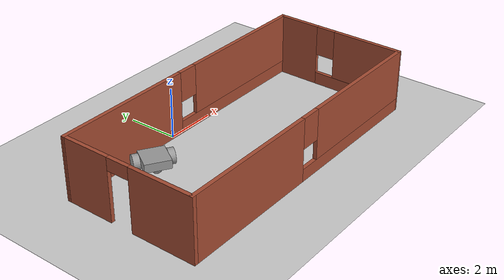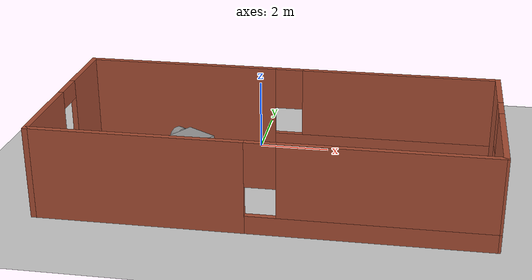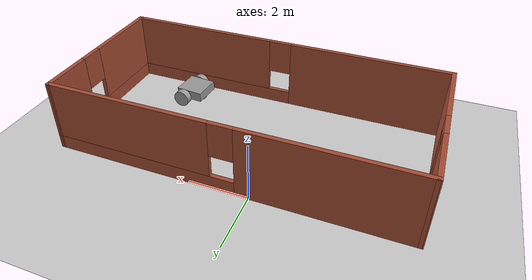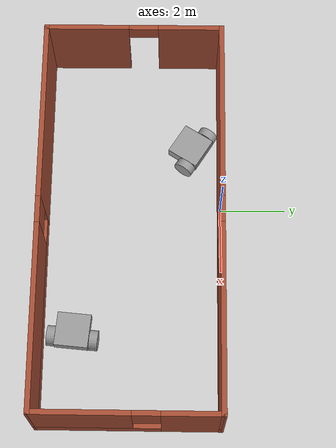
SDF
<sdf version="1.6">
 <world name="default">
  <plugin name="hello_world" filename="libhello_world.so"/>
  <light name="sun" type="directional">
   <pose>0 0 10 0 -0 0</pose>
   <diffuse>0.8 0.8 0.8 1</diffuse>
   <specular>0.2 0.2 0.2 1</specular>
   <attenuation>
    <range>1000</range>
    <constant>0.9</constant>
    <linear>0.01</linear>
    <quadratic>0.001</quadratic>
   </attenuation>
   <direction>-0.5 0.1 -0.9</direction>
  </light>
  <model name="ground_plane">
   <static>1</static>
   <link name="link">
    <collision name="collision">
     <geometry><plane><normal>0 0 1</normal><size>100 100</size></plane></geometry>
     <surface>
      <contact><collide_bitmask>65535</collide_bitmask></contact>
      <friction><ode><mu>100</mu><mu2>50</mu2></ode></friction>
     </surface>
    </collision>
    <visual name="visual">
     <cast_shadows>0</cast_shadows>
     <geometry><plane><normal>0 0 1</normal><size>100 100</size></plane></geometry>
     <material>
      <script><uri>file://media/materials/scripts/gazebo.material</uri><name>Gazebo/Grey</name></script>
     </material>
    </visual>
   </link>
  </model>
  <gravity>0 0 -9.8</gravity>
  <magnetic_field>6e-06 2.3e-05 -4.2e-05</magnetic_field>
  <atmosphere type="adiabatic"/>
  <physics name="default_physics" default="0" type="ode">
   <max_step_size>0.001</max_step_size>
   <real_time_factor>1</real_time_factor>
   <real_time_update_rate>1000</real_time_update_rate>
  </physics>
  <scene><ambient>0.4 0.4 0.4 1</ambient><background>0.7 0.7 0.7 1</background><shadows>1</shadows></scene>
  <audio><device>default</device></audio>
  <spherical_coordinates>
   <surface_model>EARTH_WGS84</surface_model>
   <latitude_deg>0</latitude_deg>
   <longitude_deg>0</longitude_deg>
   <elevation>0</elevation>
   <heading_deg>0</heading_deg>
  </spherical_coordinates>
  <model name="buildtemp">
   <pose>0.865768 -2.69248 0 0 -0 0</pose>
   <link name="Wall_1">
    <pose>-0.000147 2.66513 0 0 -0 -0.001691</pose>
    <visual name="Wall_1_Visual_0">
     <pose>-3.20401 0 1.25 0 -0 0</pose>
     <geometry><box><size>5.57199 0.15 2.5</size></box></geometry>
     <material>
      <script><uri>file://media/materials/scripts/gazebo.material</uri><name>Gazebo/Bricks</name></script>
      <ambient>1 1 1 1</ambient>
     </material>
     <meta><layer>0</layer></meta>
    </visual>
    <collision name="Wall_1_Collision_0">
     <geometry><box><size>5.57199 0.15 2.5</size></box></geometry>
     <pose>-3.20401 0 1.25 0 -0 0</pose>
    </collision>
    <visual name="Wall_1_Visual_1">
     <pose>2.786 0 0.25 0 -0 0</pose>
     <geometry><box><size>6.40802 0.15 0.5</size></box></geometry>
     <material>
      <script><uri>file://media/materials/scripts/gazebo.material</uri><name>Gazebo/Bricks</name></script>
      <ambient>1 1 1 1</ambient>
     </material>
     <meta><layer>0</layer></meta>
    </visual>
    <collision name="Wall_1_Collision_1">
     <geometry><box><size>6.40802 0.15 0.5</size></box></geometry>
     <pose>2.786 0 0.25 0 -0 0</pose>
    </collision>
    <visual name="Wall_1_Visual_2">
     <pose>3.186 0 1.5 0 -0 0</pose>
     <geometry><box><size>5.60802 0.15 2</size></box></geometry>
     <material>
      <script><uri>file://media/materials/scripts/gazebo.material</uri><name>Gazebo/Bricks</name></script>
      <ambient>1 1 1 1</ambient>
     </material>
     <meta><layer>0</layer></meta>
    </visual>
    <collision name="Wall_1_Collision_2">
     <geometry><box><size>5.60802 0.15 2</size></box></geometry>
     <pose>3.186 0 1.5 0 -0 0</pose>
    </collision>
    <visual name="Wall_1_Visual_3">
     <pose>-0.018015 0 1.9 0 -0 0</pose>
     <geometry><box><size>0.8 0.15 1.2</size></box></geometry>
     <material>
      <script><uri>file://media/materials/scripts/gazebo.material</uri><name>Gazebo/Bricks</name></script>
      <ambient>1 1 1 1</ambient>
     </material>
     <meta><layer>0</layer></meta>
    </visual>
    <collision name="Wall_1_Collision_3">
     <geometry><box><size>0.8 0.15 1.2</size></box></geometry>
     <pose>-0.018015 0 1.9 0 -0 0</pose>
    </collision>
   </link>
   <link name="Wall_3">
    <pose>-5.91515 0.000129 0 0 -0 -1.5708</pose>
    <visual name="Wall_3_Visual_0">
     <pose>-1.74357 0 1.25 0 -0 0</pose>
     <geometry><box><size>2.013 0.15 2.5</size></box></geometry>
     <material>
      <script><uri>file://media/materials/scripts/gazebo.material</uri><name>Gazebo/Bricks</name></script>
      <ambient>1 1 1 1</ambient>
     </material>
     <meta><layer>0</layer></meta>
    </visual>
    <collision name="Wall_3_Collision_0">
     <geometry><box><size>2.013 0.15 2.5</size></box></geometry>
     <pose>-1.74357 0 1.25 0 -0 0</pose>
    </collision>
    <visual name="Wall_3_Visual_1">
     <pose>1.4565 0 1.25 0 -0 0</pose>
     <geometry><box><size>2.58715 0.15 2.5</size></box></geometry>
     <material>
      <script><uri>file://media/materials/scripts/gazebo.material</uri><name>Gazebo/Bricks</name></script>
      <ambient>1 1 1 1</ambient>
     </material>
     <meta><layer>0</layer></meta>
    </visual>
    <collision name="Wall_3_Collision_1">
     <geometry><box><size>2.58715 0.15 2.5</size></box></geometry>
     <pose>1.4565 0 1.25 0 -0 0</pose>
    </collision>
    <visual name="Wall_3_Visual_2">
     <pose>-0.287073 0 2.25 0 -0 0</pose>
     <geometry><box><size>0.9 0.15 0.5</size></box></geometry>
     <material>
      <script><uri>file://media/materials/scripts/gazebo.material</uri><name>Gazebo/Bricks</name></script>
      <ambient>1 1 1 1</ambient>
     </material>
     <meta><layer>0</layer></meta>
    </visual>
    <collision name="Wall_3_Collision_2">
     <geometry><box><size>0.9 0.15 0.5</size></box></geometry>
     <pose>-0.287073 0 2.25 0 -0 0</pose>
    </collision>
   </link>
   <link name="Wall_6">
    <pose>-0.015147 -2.67487 0 0 -0 0</pose>
    <visual name="Wall_6_Visual_0">
     <pose>-3.16055 0 1.25 0 -0 0</pose>
     <geometry><box><size>5.62891 0.15 2.5</size></box></geometry>
     <material>
      <script><uri>file://media/materials/scripts/gazebo.material</uri><name>Gazebo/Bricks</name></script>
      <ambient>1 1 1 1</ambient>
     </material>
     <meta><layer>0</layer></meta>
    </visual>
    <collision name="Wall_6_Collision_0">
     <geometry><box><size>5.62891 0.15 2.5</size></box></geometry>
     <pose>-3.16055 0 1.25 0 -0 0</pose>
    </collision>
    <visual name="Wall_6_Visual_1">
     <pose>2.81445 0 0.25 0 -0 0</pose>
     <geometry><box><size>6.32109 0.15 0.5</size></box></geometry>
     <material>
      <script><uri>file://media/materials/scripts/gazebo.material</uri><name>Gazebo/Bricks</name></script>
      <ambient>1 1 1 1</ambient>
     </material>
     <meta><layer>0</layer></meta>
    </visual>
    <collision name="Wall_6_Collision_1">
     <geometry><box><size>6.32109 0.15 0.5</size></box></geometry>
     <pose>2.81445 0 0.25 0 -0 0</pose>
    </collision>
    <visual name="Wall_6_Visual_2">
     <pose>3.21445 0 1.5 0 -0 0</pose>
     <geometry><box><size>5.52109 0.15 2</size></box></geometry>
     <material>
      <script><uri>file://media/materials/scripts/gazebo.material</uri><name>Gazebo/Bricks</name></script>
      <ambient>1 1 1 1</ambient>
     </material>
     <meta><layer>0</layer></meta>
    </visual>
    <collision name="Wall_6_Collision_2">
     <geometry><box><size>5.52109 0.15 2</size></box></geometry>
     <pose>3.21445 0 1.5 0 -0 0</pose>
    </collision>
    <visual name="Wall_6_Visual_3">
     <pose>0.053909 0 1.9 0 -0 0</pose>
     <geometry><box><size>0.8 0.15 1.2</size></box></geometry>
     <material>
      <script><uri>file://media/materials/scripts/gazebo.material</uri><name>Gazebo/Bricks</name></script>
      <ambient>1 1 1 1</ambient>
     </material>
     <meta><layer>0</layer></meta>
    </visual>
    <collision name="Wall_6_Collision_3">
     <geometry><box><size>0.8 0.15 1.2</size></box></geometry>
     <pose>0.053909 0 1.9 0 -0 0</pose>
    </collision>
   </link>
   <link name="Wall_8">
    <pose>5.89985 -0.009871 0 0 -0 -1.57642</pose>
    <visual name="Wall_8_Visual_0">
     <pose>-1.84319 0 1.25 0 -0 0</pose>
     <geometry><box><size>1.79363 0.15 2.5</size></box></geometry>
     <material>
      <script><uri>file://media/materials/scripts/gazebo.material</uri><name>Gazebo/Bricks</name></script>
      <ambient>1 1 1 1</ambient>
     </material>
     <meta><layer>0</layer></meta>
    </visual>
    <collision name="Wall_8_Collision_0">
     <geometry><box><size>1.79363 0.15 2.5</size></box></geometry>
     <pose>-1.84319 0 1.25 0 -0 0</pose>
    </collision>
    <visual name="Wall_8_Visual_1">
     <pose>0.896814 0 0.25 0 -0 0</pose>
     <geometry><box><size>3.68638 0.15 0.5</size></box></geometry>
     <material>
      <script><uri>file://media/materials/scripts/gazebo.material</uri><name>Gazebo/Bricks</name></script>
      <ambient>1 1 1 1</ambient>
     </material>
     <meta><layer>0</layer></meta>
    </visual>
    <collision name="Wall_8_Collision_1">
     <geometry><box><size>3.68638 0.15 0.5</size></box></geometry>
     <pose>0.896814 0 0.25 0 -0 0</pose>
    </collision>
    <visual name="Wall_8_Visual_2">
     <pose>1.29681 0 1.5 0 -0 0</pose>
     <geometry><box><size>2.88638 0.15 2</size></box></geometry>
     <material>
      <script><uri>file://media/materials/scripts/gazebo.material</uri><name>Gazebo/Bricks</name></script>
      <ambient>1 1 1 1</ambient>
     </material>
     <meta><layer>0</layer></meta>
    </visual>
    <collision name="Wall_8_Collision_2">
     <geometry><box><size>2.88638 0.15 2</size></box></geometry>
     <pose>1.29681 0 1.5 0 -0 0</pose>
    </collision>
    <visual name="Wall_8_Visual_3">
     <pose>-0.546377 0 1.9 0 -0 0</pose>
     <geometry><box><size>0.8 0.15 1.2</size></box></geometry>
     <material>
      <script><uri>file://media/materials/scripts/gazebo.material</uri><name>Gazebo/Bricks</name></script>
      <ambient>1 1 1 1</ambient>
     </material>
     <meta><layer>0</layer></meta>
    </visual>
    <collision name="Wall_8_Collision_3">
     <geometry><box><size>0.8 0.15 1.2</size></box></geometry>
     <pose>-0.546377 0 1.9 0 -0 0</pose>
    </collision>
   </link>
   <static>1</static>
  </model>
  <model name="first_vehcile">
   <link name="link_0">
    <inertial>
     <mass>0.340951</mass>
     <inertia>
      <ixx>0.0317155</ixx>
      <ixy>0</ixy>
      <ixz>0</ixz>
      <iyy>0.0317155</iyy>
      <iyz>0</iyz>
      <izz>0.0568252</izz>
     </inertia>
    </inertial>
    <pose>-0.08053 0.001105 0.16 0 -0 0</pose>
    <visual name="visual">
     <geometry><box><size>1 1 0.340953</size></box></geometry>
     <material>
      <lighting>1</lighting>
      <script><uri>file://media/materials/scripts/gazebo.material</uri><name>Gazebo/Grey</name></script>
      <shader type="vertex"><normal_map>__default__</normal_map></shader>
      <ambient>0.3 0.3 0.3 1</ambient>
      <diffuse>0.7 0.7 0.7 1</diffuse>
      <specular>0.01 0.01 0.01 1</specular>
      <emissive>0 0 0 1</emissive>
     </material>
    </visual>
    <collision name="collision">
     <geometry><box><size>1 1 0.340953</size></box></geometry>
     <surface>
      <friction>
       <ode><mu>1</mu><mu2>1</mu2><fdir1>0 0 0</fdir1><slip1>0</slip1><slip2>0</slip2></ode>
       <torsional>
        <coefficient>1</coefficient>
        <patch_radius>0</patch_radius>
        <surface_radius>0</surface_radius>
        <use_patch_radius>1</use_patch_radius>
        <ode><slip>0</slip></ode>
       </torsional>
      </friction>
      <bounce><restitution_coefficient>0</restitution_coefficient><threshold>1e+06</threshold></bounce>
      <contact>
       <collide_without_contact>0</collide_without_contact>
       <collide_without_contact_bitmask>1</collide_without_contact_bitmask>
       <collide_bitmask>1</collide_bitmask>
       <ode>
        <soft_cfm>0</soft_cfm>
        <soft_erp>0.2</soft_erp>
        <kp>1e+13</kp>
        <kd>1</kd>
        <max_vel>0.01</max_vel>
        <min_depth>0</min_depth>
       </ode>
       <bullet>
        <split_impulse>1</split_impulse>
        <split_impulse_penetration_threshold>-0.01</split_impulse_penetration_threshold>
        <soft_cfm>0</soft_cfm>
        <soft_erp>0.2</soft_erp>
        <kp>1e+13</kp>
        <kd>1</kd>
       </bullet>
      </contact>
     </surface>
    </collision>
   </link>
   <link name="link_1">
    <inertial>
     <mass>1</mass>
     <inertia><ixx>0.145833</ixx><ixy>0</ixy><ixz>0</ixz><iyy>0.145833</iyy><iyz>0</iyz><izz>0.125</izz></inertia>
    </inertial>
    <pose>0.11947 0.641134 0.06 1.5707 -0 0</pose>
    <visual name="visual">
     <geometry><cylinder><radius>0.3</radius><length>0.25</length></cylinder></geometry>
     <material>
      <lighting>1</lighting>
      <script><uri>file://media/materials/scripts/gazebo.material</uri><name>Gazebo/Grey</name></script>
      <shader type="vertex"><normal_map>__default__</normal_map></shader>
      <ambient>0.3 0.3 0.3 1</ambient>
      <diffuse>0.7 0.7 0.7 1</diffuse>
      <specular>0.01 0.01 0.01 1</specular>
      <emissive>0 0 0 1</emissive>
     </material>
    </visual>
    <collision name="collision">
     <geometry><cylinder><radius>0.3</radius><length>0.25</length></cylinder></geometry>
     <surface>
      <friction>
       <ode><mu>1</mu><mu2>1</mu2><fdir1>0 0 0</fdir1><slip1>0</slip1><slip2>0</slip2></ode>
       <torsional>
        <coefficient>1</coefficient>
        <patch_radius>0</patch_radius>
        <surface_radius>0</surface_radius>
        <use_patch_radius>1</use_patch_radius>
        <ode><slip>0</slip></ode>
       </torsional>
      </friction>
      <bounce><restitution_coefficient>0</restitution_coefficient><threshold>1e+06</threshold></bounce>
      <contact>
       <collide_without_contact>0</collide_without_contact>
       <collide_without_contact_bitmask>1</collide_without_contact_bitmask>
       <collide_bitmask>1</collide_bitmask>
       <ode>
        <soft_cfm>0</soft_cfm>
        <soft_erp>0.2</soft_erp>
        <kp>1e+13</kp>
        <kd>1</kd>
        <max_vel>0.01</max_vel>
        <min_depth>0</min_depth>
       </ode>
       <bullet>
        <split_impulse>1</split_impulse>
        <split_impulse_penetration_threshold>-0.01</split_impulse_penetration_threshold>
        <soft_cfm>0</soft_cfm>
        <soft_erp>0.2</soft_erp>
        <kp>1e+13</kp>
        <kd>1</kd>
       </bullet>
      </contact>
     </surface>
    </collision>
   </link>
   <link name="link_1_clone">
    <inertial>
     <mass>1</mass>
     <inertia><ixx>0.145833</ixx><ixy>0</ixy><ixz>0</ixz><iyy>0.145833</iyy><iyz>0</iyz><izz>0.125</izz></inertia>
    </inertial>
    <pose>0.102841 -0.623924 0.06 1.5707 -0 0</pose>
    <visual name="visual">
     <geometry><cylinder><radius>0.3</radius><length>0.25</length></cylinder></geometry>
     <material>
      <lighting>1</lighting>
      <script><uri>file://media/materials/scripts/gazebo.material</uri><name>Gazebo/Grey</name></script>
      <shader type="vertex"><normal_map>__default__</normal_map></shader>
      <ambient>0.3 0.3 0.3 1</ambient>
      <diffuse>0.7 0.7 0.7 1</diffuse>
      <specular>0.01 0.01 0.01 1</specular>
      <emissive>0 0 0 1</emissive>
     </material>
    </visual>
    <collision name="collision">
     <geometry><cylinder><radius>0.3</radius><length>0.25</length></cylinder></geometry>
     <surface>
      <friction>
       <ode><mu>1</mu><mu2>1</mu2><fdir1>0 0 0</fdir1><slip1>0</slip1><slip2>0</slip2></ode>
       <torsional>
        <coefficient>1</coefficient>
        <patch_radius>0</patch_radius>
        <surface_radius>0</surface_radius>
        <use_patch_radius>1</use_patch_radius>
        <ode><slip>0</slip></ode>
       </torsional>
      </friction>
      <bounce><restitution_coefficient>0</restitution_coefficient><threshold>1e+06</threshold></bounce>
      <contact>
       <collide_without_contact>0</collide_without_contact>
       <collide_without_contact_bitmask>1</collide_without_contact_bitmask>
       <collide_bitmask>1</collide_bitmask>
       <ode>
        <soft_cfm>0</soft_cfm>
        <soft_erp>0.2</soft_erp>
        <kp>1e+13</kp>
        <kd>1</kd>
        <max_vel>0.01</max_vel>
        <min_depth>0</min_depth>
       </ode>
       <bullet>
        <split_impulse>1</split_impulse>
        <split_impulse_penetration_threshold>-0.01</split_impulse_penetration_threshold>
        <soft_cfm>0</soft_cfm>
        <soft_erp>0.2</soft_erp>
        <kp>1e+13</kp>
        <kd>1</kd>
       </bullet>
      </contact>
     </surface>
    </collision>
   </link>
   <link name="link_2">
    <inertial>
     <mass>1</mass>
     <inertia><ixx>0.1</ixx><ixy>0</ixy><ixz>0</ixz><iyy>0.1</iyy><iyz>0</iyz><izz>0.1</izz></inertia>
    </inertial>
    <pose>-0.33053 0.001105 -0.04 0 -0 0</pose>
    <visual name="visual">
     <geometry><sphere><radius>0.2</radius></sphere></geometry>
     <material>
      <lighting>1</lighting>
      <script><uri>file://media/materials/scripts/gazebo.material</uri><name>Gazebo/Grey</name></script>
      <shader type="vertex"><normal_map>__default__</normal_map></shader>
      <ambient>0.3 0.3 0.3 1</ambient>
      <diffuse>0.7 0.7 0.7 1</diffuse>
      <specular>0.01 0.01 0.01 1</specular>
      <emissive>0 0 0 1</emissive>
     </material>
    </visual>
    <collision name="collision">
     <geometry><sphere><radius>0.2</radius></sphere></geometry>
     <surface>
      <friction>
       <ode><mu>1</mu><mu2>1</mu2><fdir1>0 0 0</fdir1><slip1>0</slip1><slip2>0</slip2></ode>
       <torsional>
        <coefficient>1</coefficient>
        <patch_radius>0</patch_radius>
        <surface_radius>0</surface_radius>
        <use_patch_radius>1</use_patch_radius>
        <ode><slip>0</slip></ode>
       </torsional>
      </friction>
      <bounce><restitution_coefficient>0</restitution_coefficient><threshold>1e+06</threshold></bounce>
      <contact>
       <collide_without_contact>0</collide_without_contact>
       <collide_without_contact_bitmask>1</collide_without_contact_bitmask>
       <collide_bitmask>1</collide_bitmask>
       <ode>
        <soft_cfm>0</soft_cfm>
        <soft_erp>0.2</soft_erp>
        <kp>1e+13</kp>
        <kd>1</kd>
        <max_vel>0.01</max_vel>
        <min_depth>0</min_depth>
       </ode>
       <bullet>
        <split_impulse>1</split_impulse>
        <split_impulse_penetration_threshold>-0.01</split_impulse_penetration_threshold>
        <soft_cfm>0</soft_cfm>
        <soft_erp>0.2</soft_erp>
        <kp>1e+13</kp>
        <kd>1</kd>
       </bullet>
      </contact>
     </surface>
    </collision>
   </link>
   <model name="depth_camera">
    <link name="link">
     <pose>0 0 0.05 0 -0 0</pose>
     <inertial>
      <mass>0.1</mass>
      <inertia>
       <ixx>0.000166667</ixx>
       <iyy>0.000166667</iyy>
       <izz>0.000166667</izz>
       <ixy>0</ixy>
       <ixz>0</ixz>
       <iyz>0</iyz>
      </inertia>
     </inertial>
     <collision name="collision"><geometry><box><size>0.1 0.1 0.1</size></box></geometry></collision>
     <visual name="visual"><geometry><box><size>0.1 0.1 0.1</size></box></geometry></visual>
     <sensor name="camera" type="depth">
      <camera name="__default__">
       <horizontal_fov>1.047</horizontal_fov>
       <image><width>320</width><height>240</height></image>
       <clip><near>0.1</near><far>100</far></clip>
      </camera>
      <always_on>1</always_on>
      <update_rate>30</update_rate>
      <visualize>1</visualize>
     </sensor>
    </link>
    <pose>0.188751 -0.019421 -0.24 0 -0 0</pose>
   </model>
   <joint name="link_0_JOINT_0" type="revolute">
    <parent>link_0</parent>
    <child>link_1</child>
    <axis>
     <xyz>0 0 1</xyz>
     <use_parent_model_frame>0</use_parent_model_frame>
     <limit>
      <lower>-1.79769e+308</lower>
      <upper>1.79769e+308</upper>
      <effort>-1</effort>
      <velocity>-1</velocity>
     </limit>
     <dynamics>
      <spring_reference>0</spring_reference>
      <spring_stiffness>0</spring_stiffness>
      <damping>0</damping>
     </dynamics>
    </axis>
    <physics>
     <ode><limit><cfm>0</cfm><erp>0.2</erp></limit><suspension><cfm>0</cfm><erp>0.2</erp></suspension></ode>
    </physics>
   </joint>
   <joint name="link_0_JOINT_1" type="revolute">
    <parent>link_0</parent>
    <child>link_1_clone</child>
    <axis>
     <xyz>0 0 1</xyz>
     <use_parent_model_frame>0</use_parent_model_frame>
     <limit>
      <lower>-1.79769e+308</lower>
      <upper>1.79769e+308</upper>
      <effort>-1</effort>
      <velocity>-1</velocity>
     </limit>
     <dynamics>
      <spring_reference>0</spring_reference>
      <spring_stiffness>0</spring_stiffness>
      <damping>0</damping>
     </dynamics>
    </axis>
    <physics>
     <ode><limit><cfm>0</cfm><erp>0.2</erp></limit><suspension><cfm>0</cfm><erp>0.2</erp></suspension></ode>
    </physics>
   </joint>
   <joint name="link_0_JOINT_2" type="ball">
    <parent>link_0</parent>
    <child>link_2</child>
    <physics>
     <ode><limit><cfm>0</cfm><erp>0.2</erp></limit><suspension><cfm>0</cfm><erp>0.2</erp></suspension></ode>
    </physics>
   </joint>
   <joint name="link_0_JOINT_3" type="fixed">
    <parent>link_0</parent>
    <child>depth_camera::link</child>
    <physics>
     <ode><limit><cfm>0</cfm><erp>0.2</erp></limit><suspension><cfm>0</cfm><erp>0.2</erp></suspension></ode>
    </physics>
   </joint>
   <static>0</static>
   <plugin name="follower" filename="libFollowerPlugin.so"/>
   <pose>-1.92647 -0.861656 0.240009 -3e-06 -3e-05 1.00519</pose>
  </model>
  <model name="first_vehcile_0">
   <link name="link_0">
    <inertial>
     <mass>0.340951</mass>
     <inertia>
      <ixx>0.0317155</ixx>
      <ixy>0</ixy>
      <ixz>0</ixz>
      <iyy>0.0317155</iyy>
      <iyz>0</iyz>
      <izz>0.0568252</izz>
     </inertia>
    </inertial>
    <pose>-0.08053 0.001105 0.16 0 -0 0</pose>
    <visual name="visual">
     <geometry><box><size>1 1 0.340953</size></box></geometry>
     <material>
      <lighting>1</lighting>
      <script><uri>file://media/materials/scripts/gazebo.material</uri><name>Gazebo/Grey</name></script>
      <shader type="vertex"><normal_map>__default__</normal_map></shader>
      <ambient>0.3 0.3 0.3 1</ambient>
      <diffuse>0.7 0.7 0.7 1</diffuse>
      <specular>0.01 0.01 0.01 1</specular>
      <emissive>0 0 0 1</emissive>
     </material>
    </visual>
    <collision name="collision">
     <geometry><box><size>1 1 0.340953</size></box></geometry>
     <surface>
      <friction>
       <ode><mu>1</mu><mu2>1</mu2><fdir1>0 0 0</fdir1><slip1>0</slip1><slip2>0</slip2></ode>
       <torsional>
        <coefficient>1</coefficient>
        <patch_radius>0</patch_radius>
        <surface_radius>0</surface_radius>
        <use_patch_radius>1</use_patch_radius>
        <ode><slip>0</slip></ode>
       </torsional>
      </friction>
      <bounce><restitution_coefficient>0</restitution_coefficient><threshold>1e+06</threshold></bounce>
      <contact>
       <collide_without_contact>0</collide_without_contact>
       <collide_without_contact_bitmask>1</collide_without_contact_bitmask>
       <collide_bitmask>1</collide_bitmask>
       <ode>
        <soft_cfm>0</soft_cfm>
        <soft_erp>0.2</soft_erp>
        <kp>1e+13</kp>
        <kd>1</kd>
        <max_vel>0.01</max_vel>
        <min_depth>0</min_depth>
       </ode>
       <bullet>
        <split_impulse>1</split_impulse>
        <split_impulse_penetration_threshold>-0.01</split_impulse_penetration_threshold>
        <soft_cfm>0</soft_cfm>
        <soft_erp>0.2</soft_erp>
        <kp>1e+13</kp>
        <kd>1</kd>
       </bullet>
      </contact>
     </surface>
    </collision>
   </link>
   <link name="link_1">
    <inertial>
     <mass>1</mass>
     <inertia><ixx>0.145833</ixx><ixy>0</ixy><ixz>0</ixz><iyy>0.145833</iyy><iyz>0</iyz><izz>0.125</izz></inertia>
    </inertial>
    <pose>0.11947 0.641134 0.06 1.5707 -0 0</pose>
    <visual name="visual">
     <geometry><cylinder><radius>0.3</radius><length>0.25</length></cylinder></geometry>
     <material>
      <lighting>1</lighting>
      <script><uri>file://media/materials/scripts/gazebo.material</uri><name>Gazebo/Grey</name></script>
      <shader type="vertex"><normal_map>__default__</normal_map></shader>
      <ambient>0.3 0.3 0.3 1</ambient>
      <diffuse>0.7 0.7 0.7 1</diffuse>
      <specular>0.01 0.01 0.01 1</specular>
      <emissive>0 0 0 1</emissive>
     </material>
    </visual>
    <collision name="collision">
     <geometry><cylinder><radius>0.3</radius><length>0.25</length></cylinder></geometry>
     <surface>
      <friction>
       <ode><mu>1</mu><mu2>1</mu2><fdir1>0 0 0</fdir1><slip1>0</slip1><slip2>0</slip2></ode>
       <torsional>
        <coefficient>1</coefficient>
        <patch_radius>0</patch_radius>
        <surface_radius>0</surface_radius>
        <use_patch_radius>1</use_patch_radius>
        <ode><slip>0</slip></ode>
       </torsional>
      </friction>
      <bounce><restitution_coefficient>0</restitution_coefficient><threshold>1e+06</threshold></bounce>
      <contact>
       <collide_without_contact>0</collide_without_contact>
       <collide_without_contact_bitmask>1</collide_without_contact_bitmask>
       <collide_bitmask>1</collide_bitmask>
       <ode>
        <soft_cfm>0</soft_cfm>
        <soft_erp>0.2</soft_erp>
        <kp>1e+13</kp>
        <kd>1</kd>
        <max_vel>0.01</max_vel>
        <min_depth>0</min_depth>
       </ode>
       <bullet>
        <split_impulse>1</split_impulse>
        <split_impulse_penetration_threshold>-0.01</split_impulse_penetration_threshold>
        <soft_cfm>0</soft_cfm>
        <soft_erp>0.2</soft_erp>
        <kp>1e+13</kp>
        <kd>1</kd>
       </bullet>
      </contact>
     </surface>
    </collision>
   </link>
   <link name="link_1_clone">
    <inertial>
     <mass>1</mass>
     <inertia><ixx>0.145833</ixx><ixy>0</ixy><ixz>0</ixz><iyy>0.145833</iyy><iyz>0</iyz><izz>0.125</izz></inertia>
    </inertial>
    <pose>0.102841 -0.623924 0.06 1.5707 -0 0</pose>
    <visual name="visual">
     <geometry><cylinder><radius>0.3</radius><length>0.25</length></cylinder></geometry>
     <material>
      <lighting>1</lighting>
      <script><uri>file://media/materials/scripts/gazebo.material</uri><name>Gazebo/Grey</name></script>
      <shader type="vertex"><normal_map>__default__</normal_map></shader>
      <ambient>0.3 0.3 0.3 1</ambient>
      <diffuse>0.7 0.7 0.7 1</diffuse>
      <specular>0.01 0.01 0.01 1</specular>
      <emissive>0 0 0 1</emissive>
     </material>
    </visual>
    <collision name="collision">
     <geometry><cylinder><radius>0.3</radius><length>0.25</length></cylinder></geometry>
     <surface>
      <friction>
       <ode><mu>1</mu><mu2>1</mu2><fdir1>0 0 0</fdir1><slip1>0</slip1><slip2>0</slip2></ode>
       <torsional>
        <coefficient>1</coefficient>
        <patch_radius>0</patch_radius>
        <surface_radius>0</surface_radius>
        <use_patch_radius>1</use_patch_radius>
        <ode><slip>0</slip></ode>
       </torsional>
      </friction>
      <bounce><restitution_coefficient>0</restitution_coefficient><threshold>1e+06</threshold></bounce>
      <contact>
       <collide_without_contact>0</collide_without_contact>
       <collide_without_contact_bitmask>1</collide_without_contact_bitmask>
       <collide_bitmask>1</collide_bitmask>
       <ode>
        <soft_cfm>0</soft_cfm>
        <soft_erp>0.2</soft_erp>
        <kp>1e+13</kp>
        <kd>1</kd>
        <max_vel>0.01</max_vel>
        <min_depth>0</min_depth>
       </ode>
       <bullet>
        <split_impulse>1</split_impulse>
        <split_impulse_penetration_threshold>-0.01</split_impulse_penetration_threshold>
        <soft_cfm>0</soft_cfm>
        <soft_erp>0.2</soft_erp>
        <kp>1e+13</kp>
        <kd>1</kd>
       </bullet>
      </contact>
     </surface>
    </collision>
   </link>
   <link name="link_2">
    <inertial>
     <mass>1</mass>
     <inertia><ixx>0.1</ixx><ixy>0</ixy><ixz>0</ixz><iyy>0.1</iyy><iyz>0</iyz><izz>0.1</izz></inertia>
    </inertial>
    <pose>-0.33053 0.001105 -0.04 0 -0 0</pose>
    <visual name="visual">
     <geometry><sphere><radius>0.2</radius></sphere></geometry>
     <material>
      <lighting>1</lighting>
      <script><uri>file://media/materials/scripts/gazebo.material</uri><name>Gazebo/Grey</name></script>
      <shader type="vertex"><normal_map>__default__</normal_map></shader>
      <ambient>0.3 0.3 0.3 1</ambient>
      <diffuse>0.7 0.7 0.7 1</diffuse>
      <specular>0.01 0.01 0.01 1</specular>
      <emissive>0 0 0 1</emissive>
     </material>
    </visual>
    <collision name="collision">
     <geometry><sphere><radius>0.2</radius></sphere></geometry>
     <surface>
      <friction>
       <ode><mu>1</mu><mu2>1</mu2><fdir1>0 0 0</fdir1><slip1>0</slip1><slip2>0</slip2></ode>
       <torsional>
        <coefficient>1</coefficient>
        <patch_radius>0</patch_radius>
        <surface_radius>0</surface_radius>
        <use_patch_radius>1</use_patch_radius>
        <ode><slip>0</slip></ode>
       </torsional>
      </friction>
      <bounce><restitution_coefficient>0</restitution_coefficient><threshold>1e+06</threshold></bounce>
      <contact>
       <collide_without_contact>0</collide_without_contact>
       <collide_without_contact_bitmask>1</collide_without_contact_bitmask>
       <collide_bitmask>1</collide_bitmask>
       <ode>
        <soft_cfm>0</soft_cfm>
        <soft_erp>0.2</soft_erp>
        <kp>1e+13</kp>
        <kd>1</kd>
        <max_vel>0.01</max_vel>
        <min_depth>0</min_depth>
       </ode>
       <bullet>
        <split_impulse>1</split_impulse>
        <split_impulse_penetration_threshold>-0.01</split_impulse_penetration_threshold>
        <soft_cfm>0</soft_cfm>
        <soft_erp>0.2</soft_erp>
        <kp>1e+13</kp>
        <kd>1</kd>
       </bullet>
      </contact>
     </surface>
    </collision>
   </link>
   <model name="depth_camera">
    <link name="link">
     <pose>0 0 0.05 0 -0 0</pose>
     <inertial>
      <mass>0.1</mass>
      <inertia>
       <ixx>0.000166667</ixx>
       <iyy>0.000166667</iyy>
       <izz>0.000166667</izz>
       <ixy>0</ixy>
       <ixz>0</ixz>
       <iyz>0</iyz>
      </inertia>
     </inertial>
     <collision name="collision"><geometry><box><size>0.1 0.1 0.1</size></box></geometry></collision>
     <visual name="visual"><geometry><box><size>0.1 0.1 0.1</size></box></geometry></visual>
     <sensor name="camera" type="depth">
      <camera name="__default__">
       <horizontal_fov>1.047</horizontal_fov>
       <image><width>320</width><height>240</height></image>
       <clip><near>0.1</near><far>100</far></clip>
      </camera>
      <always_on>1</always_on>
      <update_rate>30</update_rate>
      <visualize>1</visualize>
     </sensor>
    </link>
    <pose>0.188751 -0.019421 -0.24 0 -0 0</pose>
   </model>
   <joint name="link_0_JOINT_0" type="revolute">
    <parent>link_0</parent>
    <child>link_1</child>
    <axis>
     <xyz>0 0 1</xyz>
     <use_parent_model_frame>0</use_parent_model_frame>
     <limit>
      <lower>-1.79769e+308</lower>
      <upper>1.79769e+308</upper>
      <effort>-1</effort>
      <velocity>-1</velocity>
     </limit>
     <dynamics>
      <spring_reference>0</spring_reference>
      <spring_stiffness>0</spring_stiffness>
      <damping>0</damping>
     </dynamics>
    </axis>
    <physics>
     <ode><limit><cfm>0</cfm><erp>0.2</erp></limit><suspension><cfm>0</cfm><erp>0.2</erp></suspension></ode>
    </physics>
   </joint>
   <joint name="link_0_JOINT_1" type="revolute">
    <parent>link_0</parent>
    <child>link_1_clone</child>
    <axis>
     <xyz>0 0 1</xyz>
     <use_parent_model_frame>0</use_parent_model_frame>
     <limit>
      <lower>-1.79769e+308</lower>
      <upper>1.79769e+308</upper>
      <effort>-1</effort>
      <velocity>-1</velocity>
     </limit>
     <dynamics>
      <spring_reference>0</spring_reference>
      <spring_stiffness>0</spring_stiffness>
      <damping>0</damping>
     </dynamics>
    </axis>
    <physics>
     <ode><limit><cfm>0</cfm><erp>0.2</erp></limit><suspension><cfm>0</cfm><erp>0.2</erp></suspension></ode>
    </physics>
   </joint>
   <joint name="link_0_JOINT_2" type="ball">
    <parent>link_0</parent>
    <child>link_2</child>
    <physics>
     <ode><limit><cfm>0</cfm><erp>0.2</erp></limit><suspension><cfm>0</cfm><erp>0.2</erp></suspension></ode>
    </physics>
   </joint>
   <joint name="link_0_JOINT_3" type="fixed">
    <parent>link_0</parent>
    <child>depth_camera::link</child>
    <physics>
     <ode><limit><cfm>0</cfm><erp>0.2</erp></limit><suspension><cfm>0</cfm><erp>0.2</erp></suspension></ode>
    </physics>
   </joint>
   <static>0</static>
   <plugin name="follower" filename="libFollowerPlugin.so"/>
   <pose>4.05157 -4.40651 0.240005 7e-06 -2.1e-05 -0.095054</pose>
  </model>
 </world>
</sdf>
